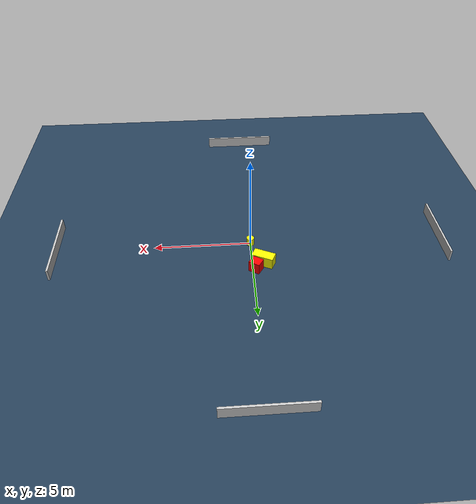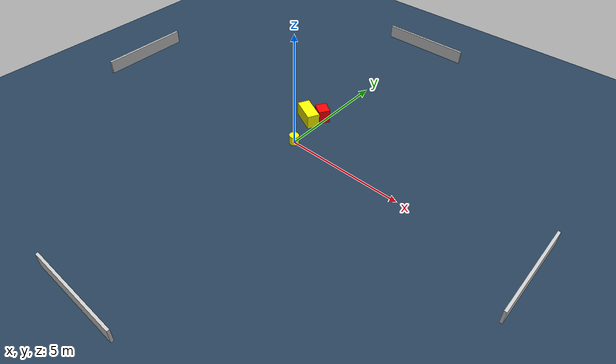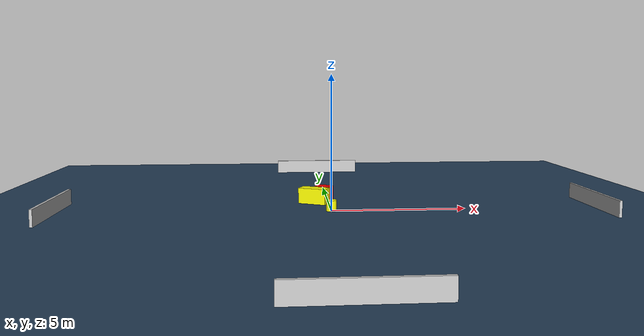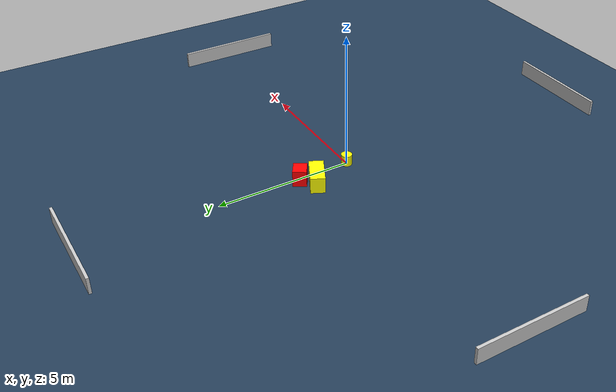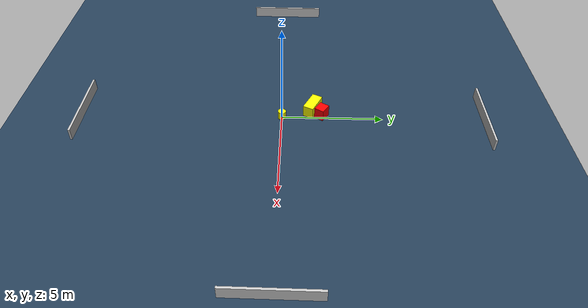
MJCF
<?xml version="1.0" ?>
<mujoco model="generated_environment">
  <option timestep="0.01" integrator="RK4" cone="elliptic"/>
  <default>
    <geom density="1"/>
  </default>
  <asset>
    <texture builtin="gradient" height="3072" name="skybox" rgb1="0.3 0.5 0.7" rgb2="0 0 0" type="skybox" width="512"/>
    <texture builtin="checker" height="300" name="groundplane" rgb1="0.2 0.3 0.4" rgb2="0.1 0.2 0.3" type="2d" width="300"/>
    <material name="groundplane" reflectance="0.2" texrepeat="5 5" texture="groundplane"/>
  </asset>
  <worldbody>
    <light dir="0 0 -1" directional="true" pos="0 0 1.5"/>
    <geom condim="3" friction="0.5 0.005 0.001" material="groundplane" name="floor" pos="0 0 0" size="0 0 0.05" type="plane"/>
    <body name="walls">
      <geom name="wall_1" condim="4" pos="-10.0 0.0 0.3" rgba="0.800000011920929 0.800000011920929 0.800000011920929 1.0" size="0.05 2.0 0.3" type="box"/>
      <geom name="wall_2" condim="4" pos="10.0 0.0 0.3" rgba="0.800000011920929 0.800000011920929 0.800000011920929 1.0" size="0.05 2.0 0.3" type="box"/>
      <geom name="wall_3" condim="4" pos="0.0 -10.0 0.3" rgba="0.800000011920929 0.800000011920929 0.800000011920929 1.0" size="2.0 0.05 0.3" type="box"/>
      <geom name="wall_4" condim="4" pos="0.0 10.0 0.3" rgba="0.800000011920929 0.800000011920929 0.800000011920929 1.0" size="2.0 0.05 0.3" type="box"/>
    </body>
    <body name="robot">
      <joint name="joint_x" type="slide" pos="0 0 0" axis="1 0 0"/>
      <joint name="joint_y" type="slide" pos="0 0 0" axis="0 1 0"/>
      <geom name="robot" type="cylinder" pos="0.0 0.0 0.2" size="0.2 0.2 0.0" mass="5.0" friction="1.0 0.005 0.0001" condim="4" rgba="1.0 1.0 0.0 1.0"/>
    </body>
    <body name="obstacle_1_movable">
      <geom name="obstacle_1_movable" condim="4" pos="-0.5602243601683589 1.5338322743299622 0.3" euler="0 0 334.00946234614514" friction="0.0 0.005 0.001" rgba="1.0 1.0 0.0 1.0" size="0.5546267553845604 0.2637504731702112 0.3" type="box" mass="0.1"/>
      <joint type="free"/>
    </body>
    <body name="obstacle_2_static">
      <geom name="obstacle_2_static" condim="4" pos="-0.15078788594815337 1.9782984834915005 0.3" euler="0 0 237.76689851350378" friction="0.0 0.005 0.001" rgba="1.0 0.0 0.0 1.0" size="0.24714723501659167 0.2845752238527376 0.3" type="box"/>
    </body>
  </worldbody>
  <actuator>
    <motor name="actuator_x" joint="joint_x" gear="1" ctrlrange="-1 1"/>
    <motor name="actuator_y" joint="joint_y" gear="1" ctrlrange="-1 1"/>
  </actuator>
</mujoco>
